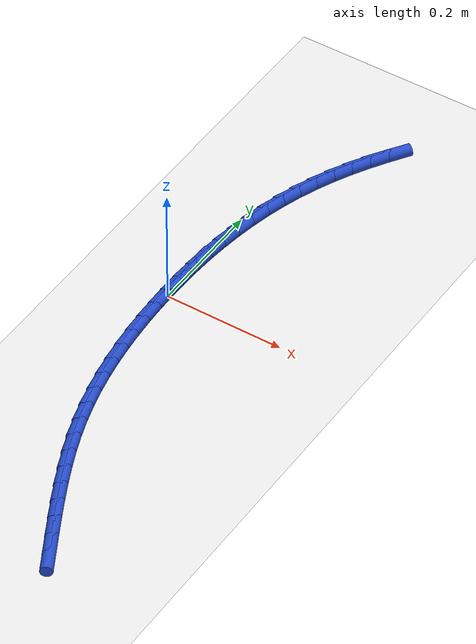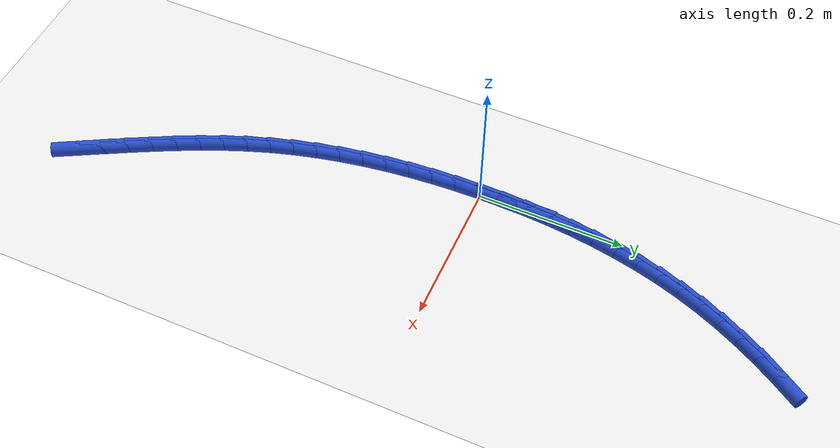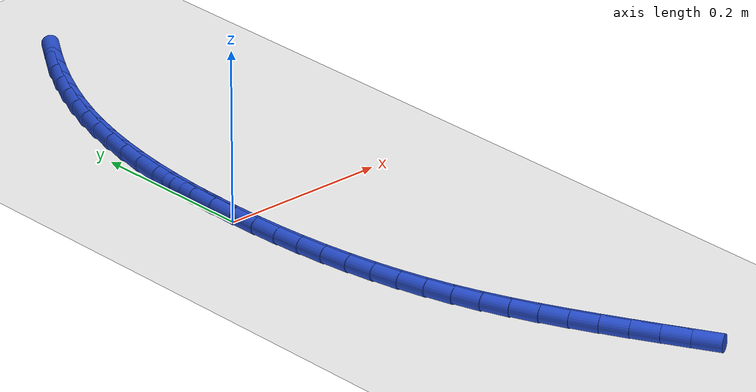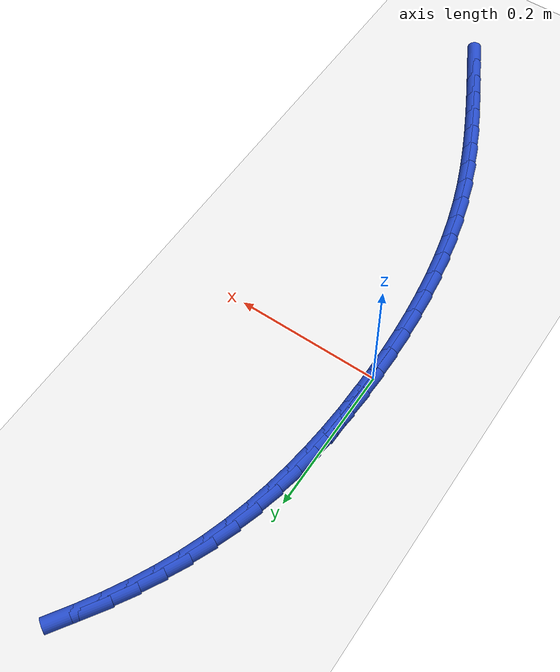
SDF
<sdf version="1.6">
 <world name="default">
  <model name="ground_plane">
   <static>1</static>
   <link name="link">
    <collision name="collision">
     <geometry><plane><normal>0 0 1</normal><size>100 100</size></plane></geometry>
     <surface><friction><ode><mu>100</mu><mu2>50</mu2></ode></friction></surface>
    </collision>
    <visual name="visual">
     <cast_shadows>0</cast_shadows>
     <geometry><plane><normal>0 0 1</normal><size>100 100</size></plane></geometry>
     <material>
      <script><uri>file://media/materials/scripts/gazebo.material</uri><name>Gazebo/WhiteGlow</name></script>
     </material>
    </visual>
   </link>
  </model>
  <model name="line">
   <link name="link_0">
    <pose>1.214306433183765e-17 -6.938893903907228e-17 0.01 0 1.57 1.5625479903937716</pose>
    <collision name="collision">
     <geometry><cylinder><radius>0.01</radius><length>0.08</length></cylinder></geometry>
    </collision>
    <visual name="visual">
     <material>
      <script><name>Gazebo/Blue</name><uri>file://media/materials/scripts/gazebo.material</uri></script>
     </material>
     <geometry><cylinder><radius>0.01</radius><length>0.08</length></cylinder></geometry>
    </visual>
   </link>
   <link name="link_1">
    <pose>0.00027351978538002117 0.03315984812850653 0.01 0 1.57 1.5339640147041222</pose>
    <collision name="collision">
     <geometry><cylinder><radius>0.01</radius><length>0.08</length></cylinder></geometry>
    </collision>
    <visual name="visual">
     <material>
      <script><name>Gazebo/Blue</name><uri>file://media/materials/scripts/gazebo.material</uri></script>
     </material>
     <geometry><cylinder><radius>0.01</radius><length>0.08</length></cylinder></geometry>
    </visual>
   </link>
   <link name="link_2">
    <pose>0.001493885571331773 0.06627788524233025 0.01 0 1.57 1.502925482752738</pose>
    <collision name="collision">
     <geometry><cylinder><radius>0.01</radius><length>0.08</length></cylinder></geometry>
    </collision>
    <visual name="visual">
     <material>
      <script><name>Gazebo/Blue</name><uri>file://media/materials/scripts/gazebo.material</uri></script>
     </material>
     <geometry><cylinder><radius>0.01</radius><length>0.08</length></cylinder></geometry>
    </visual>
   </link>
   <link name="link_3">
    <pose>0.0037371043291328397 0.0992784071167581 0.01 0 1.57 1.4692765700750796</pose>
    <collision name="collision">
     <geometry><cylinder><radius>0.01</radius><length>0.08</length></cylinder></geometry>
    </collision>
    <visual name="visual">
     <material>
      <script><name>Gazebo/Blue</name><uri>file://media/materials/scripts/gazebo.material</uri></script>
     </material>
     <geometry><cylinder><radius>0.01</radius><length>0.08</length></cylinder></geometry>
    </visual>
   </link>
   <link name="link_4">
    <pose>0.007079183030060788 0.13208570952707716 0.01 0 1.57 1.4328588573764192</pose>
    <collision name="collision">
     <geometry><cylinder><radius>0.01</radius><length>0.08</length></cylinder></geometry>
    </collision>
    <visual name="visual">
     <material>
      <script><name>Gazebo/Blue</name><uri>file://media/materials/scripts/gazebo.material</uri></script>
     </material>
     <geometry><cylinder><radius>0.01</radius><length>0.08</length></cylinder></geometry>
    </visual>
   </link>
   <link name="link_5">
    <pose>0.011596128645393196 0.16462408824857458 0.01 0 1.57 1.3935175337363084</pose>
    <collision name="collision">
     <geometry><cylinder><radius>0.01</radius><length>0.08</length></cylinder></geometry>
    </collision>
    <visual name="visual">
     <material>
      <script><name>Gazebo/Blue</name><uri>file://media/materials/scripts/gazebo.material</uri></script>
     </material>
     <geometry><cylinder><radius>0.01</radius><length>0.08</length></cylinder></geometry>
    </visual>
   </link>
   <link name="link_6">
    <pose>0.017363948146407633 0.19681783905653732 0.01 0 1.57 1.3511096710920563</pose>
    <collision name="collision">
     <geometry><cylinder><radius>0.01</radius><length>0.08</length></cylinder></geometry>
    </collision>
    <visual name="visual">
     <material>
      <script><name>Gazebo/Blue</name><uri>file://media/materials/scripts/gazebo.material</uri></script>
     </material>
     <geometry><cylinder><radius>0.01</radius><length>0.08</length></cylinder></geometry>
    </visual>
   </link>
   <link name="link_7">
    <pose>0.024458648504381664 0.22859125772625244 0.01 0 1.57 1.3055148705598156</pose>
    <collision name="collision">
     <geometry><cylinder><radius>0.01</radius><length>0.08</length></cylinder></geometry>
    </collision>
    <visual name="visual">
     <material>
      <script><name>Gazebo/Blue</name><uri>file://media/materials/scripts/gazebo.material</uri></script>
     </material>
     <geometry><cylinder><radius>0.01</radius><length>0.08</length></cylinder></geometry>
    </visual>
   </link>
   <link name="link_8">
    <pose>0.032956236690592854 0.25986864003300697 0.01 0 1.57 1.2566483965181106</pose>
    <collision name="collision">
     <geometry><cylinder><radius>0.01</radius><length>0.08</length></cylinder></geometry>
    </collision>
    <visual name="visual">
     <material>
      <script><name>Gazebo/Blue</name><uri>file://media/materials/scripts/gazebo.material</uri></script>
     </material>
     <geometry><cylinder><radius>0.01</radius><length>0.08</length></cylinder></geometry>
    </visual>
   </link>
   <link name="link_9">
    <pose>0.04293271967631879 0.2905742817520881 0.01 0 1.57 1.205137989634561</pose>
    <collision name="collision">
     <geometry><cylinder><radius>0.01</radius><length>0.08</length></cylinder></geometry>
    </collision>
    <visual name="visual">
     <material>
      <script><name>Gazebo/Blue</name><uri>file://media/materials/scripts/gazebo.material</uri></script>
     </material>
     <geometry><cylinder><radius>0.01</radius><length>0.08</length></cylinder></geometry>
    </visual>
   </link>
   <link name="link_10">
    <pose>0.05444557960911423 0.320643647442514 0.01 0 1.57 1.1550896922501135</pose>
    <collision name="collision">
     <geometry><cylinder><radius>0.01</radius><length>0.08</length></cylinder></geometry>
    </collision>
    <visual name="visual">
     <material>
      <script><name>Gazebo/Blue</name><uri>file://media/materials/scripts/gazebo.material</uri></script>
     </material>
     <geometry><cylinder><radius>0.01</radius><length>0.08</length></cylinder></geometry>
    </visual>
   </link>
   <link name="link_11">
    <pose>0.06743977099053443 0.35008004559859457 0.01 0 1.57 1.1082006075892776</pose>
    <collision name="collision">
     <geometry><cylinder><radius>0.01</radius><length>0.08</length></cylinder></geometry>
    </collision>
    <visual name="visual">
     <material>
      <script><name>Gazebo/Blue</name><uri>file://media/materials/scripts/gazebo.material</uri></script>
     </material>
     <geometry><cylinder><radius>0.01</radius><length>0.08</length></cylinder></geometry>
    </visual>
   </link>
   <link name="link_12">
    <pose>0.08181798925542157 0.3789122630880841 0.01 0 1.57 1.0646013945800745</pose>
    <collision name="collision">
     <geometry><cylinder><radius>0.01</radius><length>0.08</length></cylinder></geometry>
    </collision>
    <visual name="visual">
     <material>
      <script><name>Gazebo/Blue</name><uri>file://media/materials/scripts/gazebo.material</uri></script>
     </material>
     <geometry><cylinder><radius>0.01</radius><length>0.08</length></cylinder></geometry>
    </visual>
   </link>
   <link name="link_13">
    <pose>0.09748285429300632 0.40716913232586904 0.01 0 1.57 1.0243509187423478</pose>
    <collision name="collision">
     <geometry><cylinder><radius>0.01</radius><length>0.08</length></cylinder></geometry>
    </collision>
    <visual name="visual">
     <material>
      <script><name>Gazebo/Blue</name><uri>file://media/materials/scripts/gazebo.material</uri></script>
     </material>
     <geometry><cylinder><radius>0.01</radius><length>0.08</length></cylinder></geometry>
    </visual>
   </link>
   <link name="link_14">
    <pose>0.11433698599251936 0.43487948572683605 0.01 0 1.57 0.9874526236476397</pose>
    <collision name="collision">
     <geometry><cylinder><radius>0.01</radius><length>0.08</length></cylinder></geometry>
    </collision>
    <visual name="visual">
     <material>
      <script><name>Gazebo/Blue</name><uri>file://media/materials/scripts/gazebo.material</uri></script>
     </material>
     <geometry><cylinder><radius>0.01</radius><length>0.08</length></cylinder></geometry>
    </visual>
   </link>
   <link name="link_193">
    <pose>0.1535178496829026 -0.5260768635578195 0.01 0 1.57 -1.0728132952445333</pose>
    <collision name="collision">
     <geometry><cylinder><radius>0.01</radius><length>0.08</length></cylinder></geometry>
    </collision>
    <visual name="visual">
     <material>
      <script><name>Gazebo/Blue</name><uri>file://media/materials/scripts/gazebo.material</uri></script>
     </material>
     <geometry><cylinder><radius>0.01</radius><length>0.08</length></cylinder></geometry>
    </visual>
   </link>
   <link name="link_194">
    <pose>0.1377309706952544 -0.4970401289122629 0.01 0 1.57 -1.0786706228454872</pose>
    <collision name="collision">
     <geometry><cylinder><radius>0.01</radius><length>0.08</length></cylinder></geometry>
    </collision>
    <visual name="visual">
     <material>
      <script><name>Gazebo/Blue</name><uri>file://media/materials/scripts/gazebo.material</uri></script>
     </material>
     <geometry><cylinder><radius>0.01</radius><length>0.08</length></cylinder></geometry>
    </visual>
   </link>
   <link name="link_195">
    <pose>0.12219109746684649 -0.4680544106329076 0.01 0 1.57 -1.0900661688085085</pose>
    <collision name="collision">
     <geometry><cylinder><radius>0.01</radius><length>0.08</length></cylinder></geometry>
    </collision>
    <visual name="visual">
     <material>
      <script><name>Gazebo/Blue</name><uri>file://media/materials/scripts/gazebo.material</uri></script>
     </material>
     <geometry><cylinder><radius>0.01</radius><length>0.08</length></cylinder></geometry>
    </visual>
   </link>
   <link name="link_196">
    <pose>0.10705694177431516 -0.4390361621051502 0.01 0 1.57 -1.1070783240062911</pose>
    <collision name="collision">
     <geometry><cylinder><radius>0.01</radius><length>0.08</length></cylinder></geometry>
    </collision>
    <visual name="visual">
     <material>
      <script><name>Gazebo/Blue</name><uri>file://media/materials/scripts/gazebo.material</uri></script>
     </material>
     <geometry><cylinder><radius>0.01</radius><length>0.08</length></cylinder></geometry>
    </visual>
   </link>
   <link name="link_197">
    <pose>0.09248721539429779 -0.40990183671438946 0.01 0 1.57 -1.1297717620556855</pose>
    <collision name="collision">
     <geometry><cylinder><radius>0.01</radius><length>0.08</length></cylinder></geometry>
    </collision>
    <visual name="visual">
     <material>
      <script><name>Gazebo/Blue</name><uri>file://media/materials/scripts/gazebo.material</uri></script>
     </material>
     <geometry><cylinder><radius>0.01</radius><length>0.08</length></cylinder></geometry>
    </visual>
   </link>
   <link name="link_198">
    <pose>0.07864063010343064 -0.3805678878460222 0.01 0 1.57 -1.1581806416129963</pose>
    <collision name="collision">
     <geometry><cylinder><radius>0.01</radius><length>0.08</length></cylinder></geometry>
    </collision>
    <visual name="visual">
     <material>
      <script><name>Gazebo/Blue</name><uri>file://media/materials/scripts/gazebo.material</uri></script>
     </material>
     <geometry><cylinder><radius>0.01</radius><length>0.08</length></cylinder></geometry>
    </visual>
   </link>
   <link name="link_199">
    <pose>0.06567589767835039 -0.35095076888544563 0.01 0 1.57 -1.1922859036622493</pose>
    <collision name="collision">
     <geometry><cylinder><radius>0.01</radius><length>0.08</length></cylinder></geometry>
    </collision>
    <visual name="visual">
     <material>
      <script><name>Gazebo/Blue</name><uri>file://media/materials/scripts/gazebo.material</uri></script>
     </material>
     <geometry><cylinder><radius>0.01</radius><length>0.08</length></cylinder></geometry>
    </visual>
   </link>
   <link name="link_200">
    <pose>0.05375172989569366 -0.3209669332180573 0.01 0 1.57 -1.231984228300377</pose>
    <collision name="collision">
     <geometry><cylinder><radius>0.01</radius><length>0.08</length></cylinder></geometry>
    </collision>
    <visual name="visual">
     <material>
      <script><name>Gazebo/Blue</name><uri>file://media/materials/scripts/gazebo.material</uri></script>
     </material>
     <geometry><cylinder><radius>0.01</radius><length>0.08</length></cylinder></geometry>
    </visual>
   </link>
   <link name="link_201">
    <pose>0.04302674719492807 -0.29053289391909387 0.01 0 1.57 -1.2752528117614073</pose>
    <collision name="collision">
     <geometry><cylinder><radius>0.01</radius><length>0.08</length></cylinder></geometry>
    </collision>
    <visual name="visual">
     <material>
      <script><name>Gazebo/Blue</name><uri>file://media/materials/scripts/gazebo.material</uri></script>
     </material>
     <geometry><cylinder><radius>0.01</radius><length>0.08</length></cylinder></geometry>
    </visual>
   </link>
   <link name="link_202">
    <pose>0.03360847739162834 -0.2595985536526377 0.01 0 1.57 -1.317109710444524</pose>
    <collision name="collision">
     <geometry><cylinder><radius>0.01</radius><length>0.08</length></cylinder></geometry>
    </collision>
    <visual name="visual">
     <material>
      <script><name>Gazebo/Blue</name><uri>file://media/materials/scripts/gazebo.material</uri></script>
     </material>
     <geometry><cylinder><radius>0.01</radius><length>0.08</length></cylinder></geometry>
    </visual>
   </link>
   <link name="link_203">
    <pose>0.025468398616845644 -0.22820272504046923 0.01 0 1.57 -1.3567679943453093</pose>
    <collision name="collision">
     <geometry><cylinder><radius>0.01</radius><length>0.08</length></cylinder></geometry>
    </collision>
    <visual name="visual">
     <material>
      <script><name>Gazebo/Blue</name><uri>file://media/materials/scripts/gazebo.material</uri></script>
     </material>
     <geometry><cylinder><radius>0.01</radius><length>0.08</length></cylinder></geometry>
    </visual>
   </link>
   <link name="link_204">
    <pose>0.018555591870676964 -0.19639885747454838 0.01 0 1.57 -1.3942721419405126</pose>
    <collision name="collision">
     <geometry><cylinder><radius>0.01</radius><length>0.08</length></cylinder></geometry>
    </collision>
    <visual name="visual">
     <material>
      <script><name>Gazebo/Blue</name><uri>file://media/materials/scripts/gazebo.material</uri></script>
     </material>
     <geometry><cylinder><radius>0.01</radius><length>0.08</length></cylinder></geometry>
    </visual>
   </link>
   <link name="link_205">
    <pose>0.012819138153219427 -0.16424040034683532 0.01 0 1.57 -1.429686318109732</pose>
    <collision name="collision">
     <geometry><cylinder><radius>0.01</radius><length>0.08</length></cylinder></geometry>
    </collision>
    <visual name="visual">
     <material>
      <script><name>Gazebo/Blue</name><uri>file://media/materials/scripts/gazebo.material</uri></script>
     </material>
     <geometry><cylinder><radius>0.01</radius><length>0.08</length></cylinder></geometry>
    </visual>
   </link>
   <link name="link_206">
    <pose>0.008208118464570221 -0.13178080304929043 0.01 0 1.57 -1.4630888787070864</pose>
    <collision name="collision">
     <geometry><cylinder><radius>0.01</radius><length>0.08</length></cylinder></geometry>
    </collision>
    <visual name="visual">
     <material>
      <script><name>Gazebo/Blue</name><uri>file://media/materials/scripts/gazebo.material</uri></script>
     </material>
     <geometry><cylinder><radius>0.01</radius><length>0.08</length></cylinder></geometry>
    </visual>
   </link>
   <link name="link_207">
    <pose>0.004671613804826507 -0.0990735149738741 0.01 0 1.57 -1.4945676698932362</pose>
    <collision name="collision">
     <geometry><cylinder><radius>0.01</radius><length>0.08</length></cylinder></geometry>
    </collision>
    <visual name="visual">
     <material>
      <script><name>Gazebo/Blue</name><uri>file://media/materials/scripts/gazebo.material</uri></script>
     </material>
     <geometry><cylinder><radius>0.01</radius><length>0.08</length></cylinder></geometry>
    </visual>
   </link>
   <link name="link_208">
    <pose>0.0021587051740854547 -0.06617198551254665 0.01 0 1.57 -1.5242161405732244</pose>
    <collision name="collision">
     <geometry><cylinder><radius>0.01</radius><length>0.08</length></cylinder></geometry>
    </collision>
    <visual name="visual">
     <material>
      <script><name>Gazebo/Blue</name><uri>file://media/materials/scripts/gazebo.material</uri></script>
     </material>
     <geometry><cylinder><radius>0.01</radius><length>0.08</length></cylinder></geometry>
    </visual>
   </link>
   <link name="link_209">
    <pose>0.0006184735724442075 -0.0331296640572677 0.01 0 1.57 -1.5521302232243803</pose>
    <collision name="collision">
     <geometry><cylinder><radius>0.01</radius><length>0.08</length></cylinder></geometry>
    </collision>
    <visual name="visual">
     <material>
      <script><name>Gazebo/Blue</name><uri>file://media/materials/scripts/gazebo.material</uri></script>
     </material>
     <geometry><cylinder><radius>0.01</radius><length>0.08</length></cylinder></geometry>
    </visual>
   </link>
   <link name="link_210">
    <pose>8.673617379884035e-18 1.1102230246251565e-16 0.01 0 1.57 1.563186751511109</pose>
    <collision name="collision">
     <geometry><cylinder><radius>0.01</radius><length>0.08</length></cylinder></geometry>
    </collision>
    <visual name="visual">
     <material>
      <script><name>Gazebo/Blue</name><uri>file://media/materials/scripts/gazebo.material</uri></script>
     </material>
     <geometry><cylinder><radius>0.01</radius><length>0.08</length></cylinder></geometry>
    </visual>
   </link>
   <link name="link_211">
    <pose>0.00025236545684995115 0.033163557267298735 0.01 0 1.57 1.538455282407338</pose>
    <collision name="collision">
     <geometry><cylinder><radius>0.01</radius><length>0.08</length></cylinder></geometry>
    </collision>
    <visual name="visual">
     <material>
      <script><name>Gazebo/Blue</name><uri>file://media/materials/scripts/gazebo.material</uri></script>
     </material>
     <geometry><cylinder><radius>0.01</radius><length>0.08</length></cylinder></geometry>
    </visual>
   </link>
   <link name="link_212">
    <pose>0.001324650943091298 0.06630755835266855 0.01 0 1.57 1.5508216090185682</pose>
    <collision name="collision">
     <geometry><cylinder><radius>0.01</radius><length>0.08</length></cylinder></geometry>
    </collision>
    <visual name="visual">
     <material>
      <script><name>Gazebo/Blue</name><uri>file://media/materials/scripts/gazebo.material</uri></script>
     </material>
     <geometry><cylinder><radius>0.01</radius><length>0.08</length></cylinder></geometry>
    </visual>
   </link>
  </model>
 </world>
</sdf>
